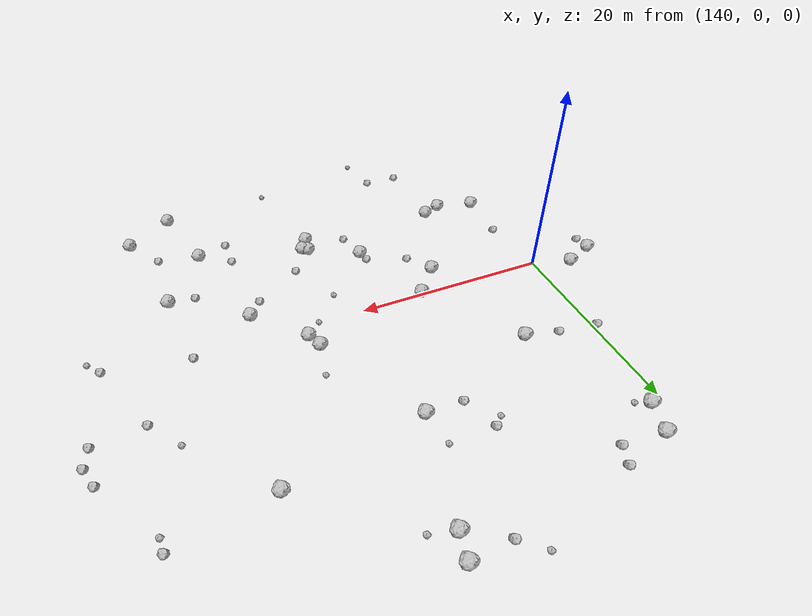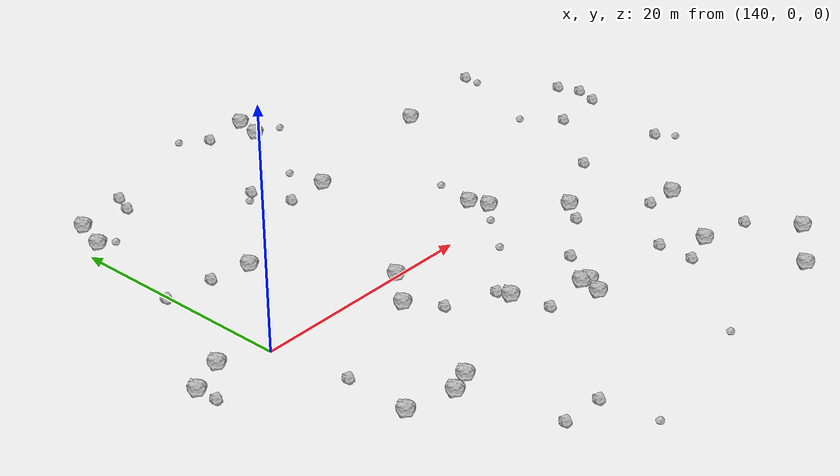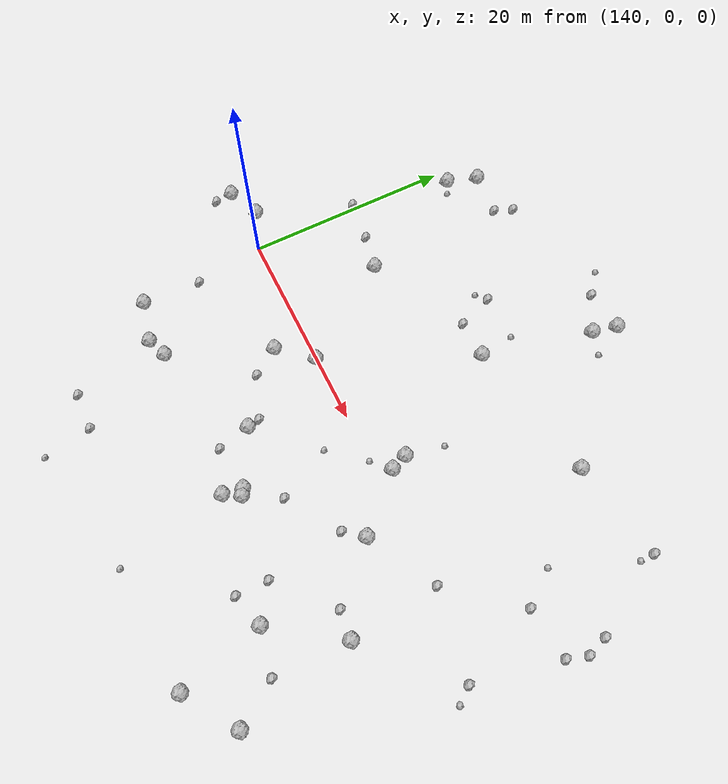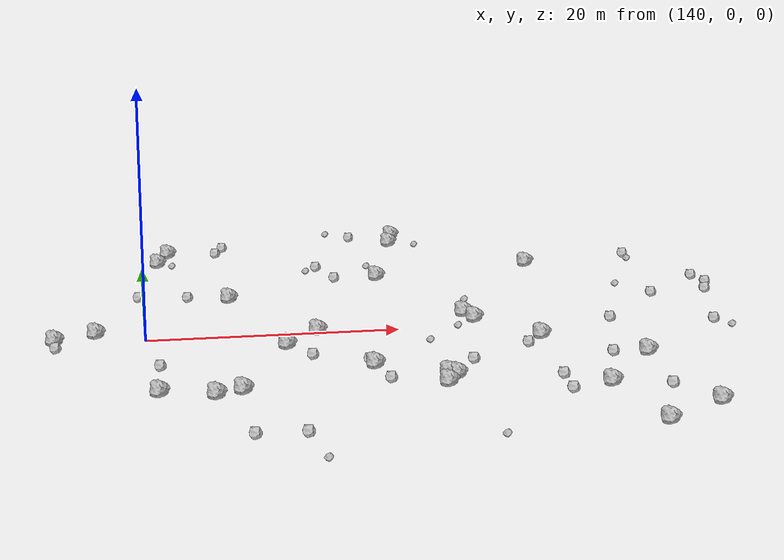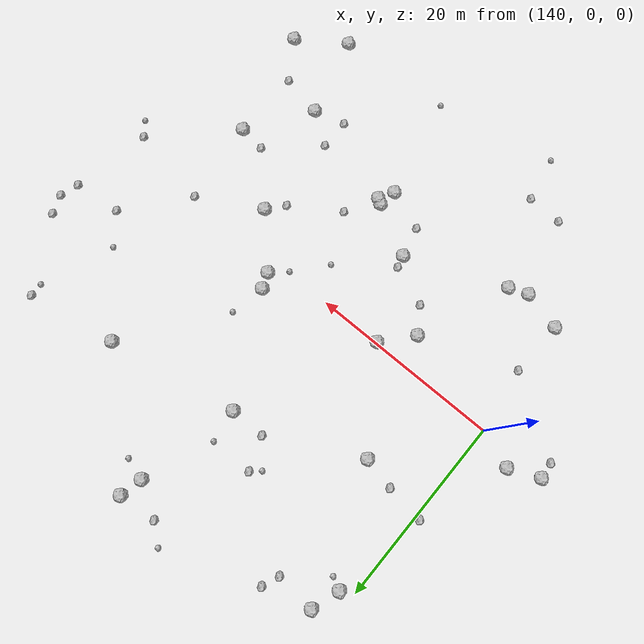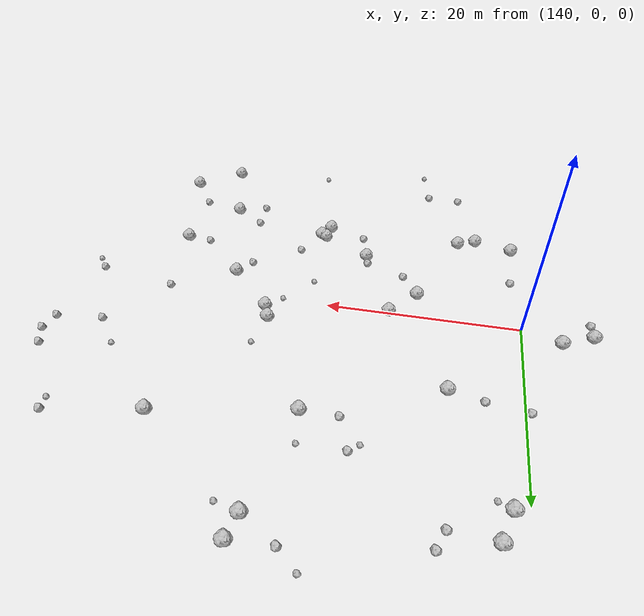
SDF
<sdf version="1.6">
 <world name="default">
  <include><uri>model://sun</uri></include>
  <model name="rock1_4_2">
   <include><uri>model://rock1</uri><pose>175.63371937235578 -22.839032194517994 0.5 0 0 0</pose></include>
  </model>
  <model name="rock1_4_3">
   <include><uri>model://rock1</uri><pose>162.11826443857575 -11.342843346045967 0.5 0 0 0</pose></include>
  </model>
  <model name="rock1_4_4">
   <include><uri>model://rock1</uri><pose>163.22972641464742 27.246568451445384 0.5 0 0 0</pose></include>
  </model>
  <model name="rock1_4_5">
   <include><uri>model://rock1</uri><pose>160.11879856559736 14.170925938024283 0.5 0 0 0</pose></include>
  </model>
  <model name="rock1_4_6">
   <include><uri>model://rock1</uri><pose>165.76894983814094 3.032064185324792 0.5 0 0 0</pose></include>
  </model>
  <model name="rock1_4_7">
   <include><uri>model://rock1</uri><pose>142.4004304971579 23.631400614633662 0.5 0 0 0</pose></include>
  </model>
  <model name="rock1_4_8">
   <include><uri>model://rock1</uri><pose>178.0729618479976 -8.517331387371353 0.5 0 0 0</pose></include>
  </model>
  <model name="rock1_4_9">
   <include><uri>model://rock1</uri><pose>147.07932306297707 9.400566274016768 0.5 0 0 0</pose></include>
  </model>
  <model name="rock1_4_10">
   <include><uri>model://rock1</uri><pose>141.42941477921585 20.673575280927913 0.5 0 0 0</pose></include>
  </model>
  <model name="rock1_4_11">
   <include><uri>model://rock1</uri><pose>162.68220988513818 -11.69401121885383 0.5 0 0 0</pose></include>
  </model>
  <model name="rock1_4_12">
   <include><uri>model://rock1</uri><pose>133.03081095695475 0.11647317113021671 0.5 0 0 0</pose></include>
  </model>
  <model name="rock1_4_13">
   <include><uri>model://rock1</uri><pose>180.38214972495413 -19.605510305878127 0.5 0 0 0</pose></include>
  </model>
  <model name="rock1_4_14">
   <include><uri>model://rock1</uri><pose>153.5337730902823 -0.08044723926802533 0.5 0 0 0</pose></include>
  </model>
  <model name="rock1_4_15">
   <include><uri>model://rock1</uri><pose>156.98998150593988 -8.596288987318175 0.5 0 0 0</pose></include>
  </model>
  <model name="rock1_4_16">
   <include><uri>model://rock1</uri><pose>150.8525128394131 -3.172400231373299 0.5 0 0 0</pose></include>
  </model>
  <model name="rock1_4_17">
   <include><uri>model://rock1</uri><pose>144.88202822232262 -13.493522576944176 0.5 0 0 0</pose></include>
  </model>
  <model name="rock1_4_18">
   <include><uri>model://rock1</uri><pose>166.3926594101846 1.4192974439796373 0.5 0 0 0</pose></include>
  </model>
  <model name="rock1_4_19">
   <include><uri>model://rock1</uri><pose>140.8371039273992 -12.487746780181844 0.5 0 0 0</pose></include>
  </model>
  <model name="rock1_4_20">
   <include><uri>model://rock1</uri><pose>173.62968681323463 -14.81378930160692 0.5 0 0 0</pose></include>
  </model>
  <model name="rock1_4_21">
   <include><uri>model://rock1</uri><pose>136.19561285048405 1.471202283330971 0.5 0 0 0</pose></include>
  </model>
  <model name="rock1_4_22">
   <include><uri>model://rock1</uri><pose>161.80245171326735 -13.21562789566897 0.5 0 0 0</pose></include>
  </model>
  <model name="rock1_4_23">
   <include><uri>model://rock1</uri><pose>173.807040127794 16.61781683618628 0.5 0 0 0</pose></include>
  </model>
  <model name="rock1_4_24">
   <include><uri>model://rock1</uri><pose>146.84522198660133 -12.752195781872054 0.5 0 0 0</pose></include>
  </model>
  <model name="rock1_4_25">
   <include><uri>model://rock1</uri><pose>170.8643036578979 -3.4213999322928323 0.5 0 0 0</pose></include>
  </model>
  <model name="rock1_4_26">
   <include><uri>model://rock1</uri><pose>162.67443314822455 24.828219278132053 0.5 0 0 0</pose></include>
  </model>
  <model name="rock2_4_0">
   <include><uri>model://rock2</uri><pose>141.00462577463995 -6.783300965223649 0.3 0 0 0</pose></include>
  </model>
  <model name="rock2_4_1">
   <include><uri>model://rock2</uri><pose>159.1831500695794 26.993469015656203 0.3 0 0 0</pose></include>
  </model>
  <model name="rock2_4_2">
   <include><uri>model://rock2</uri><pose>143.64282872738312 10.18154957895024 0.3 0 0 0</pose></include>
  </model>
  <model name="rock2_4_3">
   <include><uri>model://rock2</uri><pose>155.1462173756223 17.661628152887452 0.3 0 0 0</pose></include>
  </model>
  <model name="rock2_4_4">
   <include><uri>model://rock2</uri><pose>187.20615054748663 10.678627023583587 0.3 0 0 0</pose></include>
  </model>
  <model name="rock2_4_5">
   <include><uri>model://rock2</uri><pose>147.04525536880158 -21.482273131473576 0.3 0 0 0</pose></include>
  </model>
  <model name="rock2_4_6">
   <include><uri>model://rock2</uri><pose>175.36565779015362 -8.194549069678732 0.3 0 0 0</pose></include>
  </model>
  <model name="rock2_4_7">
   <include><uri>model://rock2</uri><pose>156.68045641052817 -7.360760379460444 0.3 0 0 0</pose></include>
  </model>
  <model name="rock2_4_8">
   <include><uri>model://rock2</uri><pose>139.57100886156817 10.726061168554772 0.3 0 0 0</pose></include>
  </model>
  <model name="rock2_4_9">
   <include><uri>model://rock2</uri><pose>152.54338561748023 -5.75138764458362 0.3 0 0 0</pose></include>
  </model>
  <model name="rock2_4_10">
   <include><uri>model://rock2</uri><pose>170.45863485254245 -12.617582995593292 0.3 0 0 0</pose></include>
  </model>
  <model name="rock2_4_11">
   <include><uri>model://rock2</uri><pose>150.65194331642718 -21.623881849726512 0.3 0 0 0</pose></include>
  </model>
  <model name="rock2_4_12">
   <include><uri>model://rock2</uri><pose>156.395700734206 14.224006269314451 0.3 0 0 0</pose></include>
  </model>
  <model name="rock2_4_13">
   <include><uri>model://rock2</uri><pose>182.40020685191178 6.295855960594714 0.3 0 0 0</pose></include>
  </model>
  <model name="rock2_4_14">
   <include><uri>model://rock2</uri><pose>164.49168286540132 -8.378059473548468 0.3 0 0 0</pose></include>
  </model>
  <model name="rock2_4_15">
   <include><uri>model://rock2</uri><pose>169.40261496823302 -5.170925654526911 0.3 0 0 0</pose></include>
  </model>
  <model name="rock2_4_16">
   <include><uri>model://rock2</uri><pose>133.12892049729112 -1.6044348544791553 0.3 0 0 0</pose></include>
  </model>
  <model name="rock2_4_17">
   <include><uri>model://rock2</uri><pose>157.7205193626861 -11.71782983546468 0.3 0 0 0</pose></include>
  </model>
  <model name="rock2_4_18">
   <include><uri>model://rock2</uri><pose>187.87144532279575 8.71350625870842 0.3 0 0 0</pose></include>
  </model>
  <model name="rock2_4_19">
   <include><uri>model://rock2</uri><pose>146.59327663721712 23.309143741168917 0.3 0 0 0</pose></include>
  </model>
  <model name="rock2_4_20">
   <include><uri>model://rock2</uri><pose>177.24637498019047 0.08877064719409589 0.3 0 0 0</pose></include>
  </model>
  <model name="rock2_4_21">
   <include><uri>model://rock2</uri><pose>177.86591455495736 -15.691956655180597 0.3 0 0 0</pose></include>
  </model>
  <model name="rock2_4_22">
   <include><uri>model://rock2</uri><pose>183.1317848589706 18.28840726465443 0.3 0 0 0</pose></include>
  </model>
  <model name="rock2_4_23">
   <include><uri>model://rock2</uri><pose>147.30322538956617 25.097990853098807 0.3 0 0 0</pose></include>
  </model>
  <model name="rock2_4_24">
   <include><uri>model://rock2</uri><pose>170.4358316327854 -15.698119739037535 0.3 0 0 0</pose></include>
  </model>
  <model name="rock2_4_25">
   <include><uri>model://rock2</uri><pose>185.47406208522202 -1.396261982130735 0.3 0 0 0</pose></include>
  </model>
  <model name="rock2_4_26">
   <include><uri>model://rock2</uri><pose>187.23740378641023 6.778954332532045 0.3 0 0 0</pose></include>
  </model>
  <model name="rock3_4_0">
   <include><uri>model://rock3</uri><pose>180.10478052089184 9.348282829364244 0.2 0 0 0</pose></include>
  </model>
  <model name="rock3_4_1">
   <include><uri>model://rock3</uri><pose>151.4964485205488 -26.269401998769236 0.2 0 0 0</pose></include>
  </model>
  <model name="rock3_4_2">
   <include><uri>model://rock3</uri><pose>186.5321559883942 -2.865472743126311 0.2 0 0 0</pose></include>
  </model>
  <model name="rock3_4_3">
   <include><uri>model://rock3</uri><pose>166.47736780936197 6.704259775458361 0.2 0 0 0</pose></include>
  </model>
  <model name="rock3_4_4">
   <include><uri>model://rock3</uri><pose>161.99188564901579 -3.3226847590095403 0.2 0 0 0</pose></include>
  </model>
  <model name="rock3_4_5">
   <include><uri>model://rock3</uri><pose>164.7503558523876 -0.09487511588924491 0.2 0 0 0</pose></include>
  </model>
  <model name="rock3_4_6">
   <include><uri>model://rock3</uri><pose>157.17013679508955 28.68787992083704 0.2 0 0 0</pose></include>
  </model>
  <model name="rock3_4_7">
   <include><uri>model://rock3</uri><pose>142.6268079369786 20.03485404973712 0.2 0 0 0</pose></include>
  </model>
  <model name="rock3_4_8">
   <include><uri>model://rock3</uri><pose>163.91607819716324 -23.72700865795121 0.2 0 0 0</pose></include>
  </model>
  <model name="rock3_4_9">
   <include><uri>model://rock3</uri><pose>164.93848154086945 24.159634110079097 0.2 0 0 0</pose></include>
  </model>
  <model name="rock3_4_10">
   <include><uri>model://rock3</uri><pose>159.63204382776647 17.641291022324253 0.2 0 0 0</pose></include>
  </model>
  <model name="rock3_4_11">
   <include><uri>model://rock3</uri><pose>183.15560589874778 16.86206843866273 0.2 0 0 0</pose></include>
  </model>
  <model name="rock3_4_12">
   <include><uri>model://rock3</uri><pose>154.16526980135882 16.78793333964382 0.2 0 0 0</pose></include>
  </model>
 </world>
</sdf>
